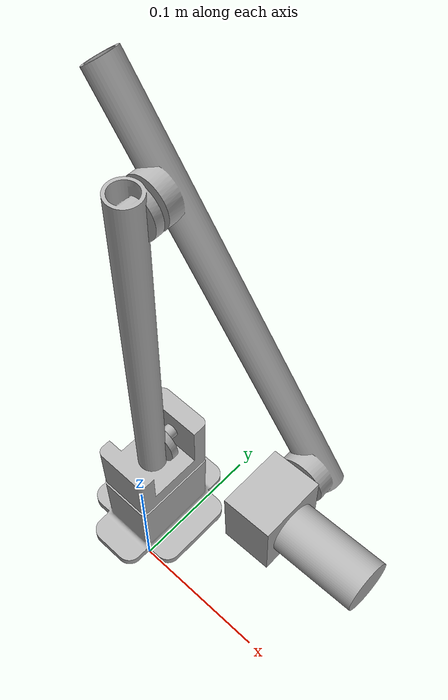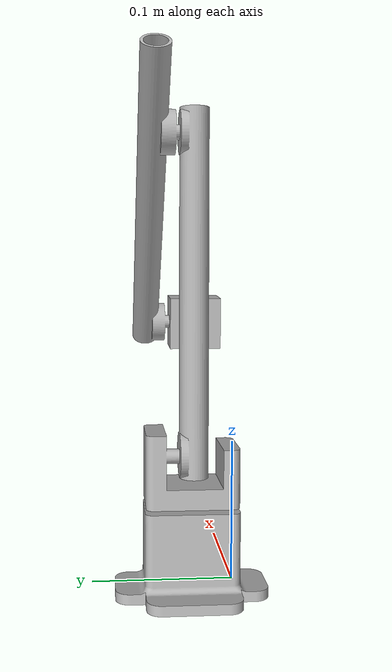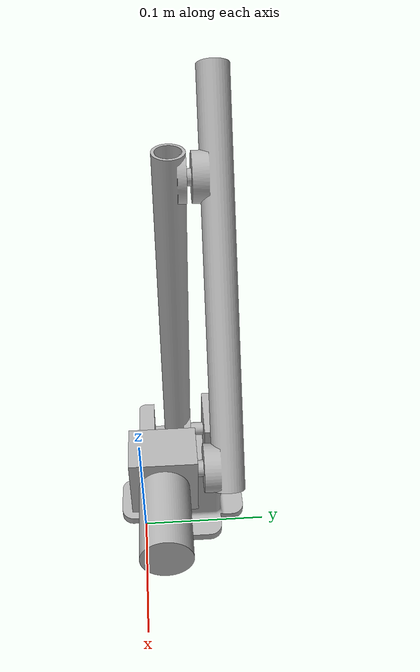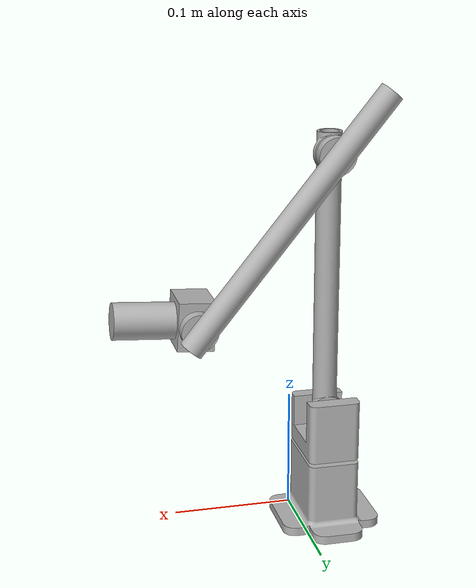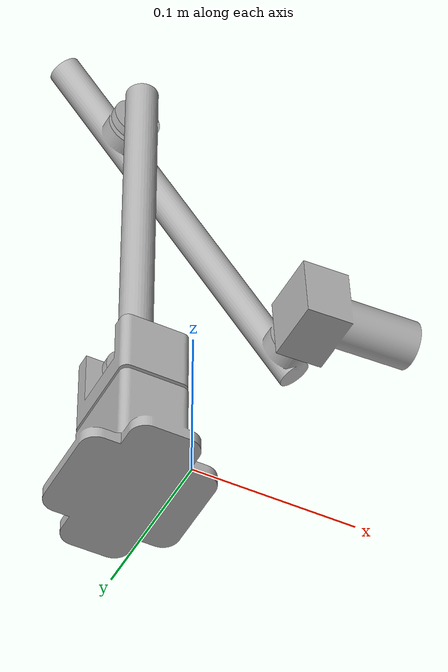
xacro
<?xml version="1.0" ?>
<robot name="simulation" xmlns:xacro="http://www.ros.org/wiki/xacro">

<xacro:include filename="$(find simulation_description)/urdf/materials.xacro" />
<xacro:include filename="$(find simulation_description)/urdf/simulation.trans" />
<xacro:include filename="$(find simulation_description)/urdf/simulation.gazebo" />
<link name="base_link">
  <inertial>
    <origin xyz="-0.02168072169092677 0.03199999998785326 0.026065845188193455" rpy="0 0 0"/>
    <mass value="0.20158716496665316"/>
    <inertia ixx="0.000155" iyy="0.000115" izz="0.000129" ixy="0.0" iyz="-0.0" ixz="0.0"/>
  </inertial>
  <visual>
    <origin xyz="0 0 0" rpy="0 0 0"/>
    <geometry>
      <mesh filename="package://simulation_description/meshes/base_link.stl" scale="0.001 0.001 0.001"/>
    </geometry>
    <material name="silver"/>
  </visual>
  <collision>
    <origin xyz="0 0 0" rpy="0 0 0"/>
    <geometry>
      <mesh filename="package://simulation_description/meshes/base_link.stl" scale="0.001 0.001 0.001"/>
    </geometry>
  </collision>
</link>

<link name="link_1_v2_1">
  <inertial>
    <origin xyz="2.783077051662919e-07 0.0028276181312013385 0.011612729430932736" rpy="0 0 0"/>
    <mass value="0.07059763098991478"/>
    <inertia ixx="4.7e-05" iyy="2.4e-05" izz="4.5e-05" ixy="-0.0" iyz="-4e-06" ixz="-0.0"/>
  </inertial>
  <visual>
    <origin xyz="0.021681 -0.032 -0.07" rpy="0 0 0"/>
    <geometry>
      <mesh filename="package://simulation_description/meshes/link_1_v2_1.stl" scale="0.001 0.001 0.001"/>
    </geometry>
    <material name="silver"/>
  </visual>
  <collision>
    <origin xyz="0.021681 -0.032 -0.07" rpy="0 0 0"/>
    <geometry>
      <mesh filename="package://simulation_description/meshes/link_1_v2_1.stl" scale="0.001 0.001 0.001"/>
    </geometry>
  </collision>
</link>

<link name="link2_v2_1">
  <inertial>
    <origin xyz="-4.5304254955455536e-05 -0.009299430381141394 0.10819157962021662" rpy="0 0 0"/>
    <mass value="0.03618222964118624"/>
    <inertia ixx="0.000225" iyy="0.000226" izz="3e-06" ixy="0.0" iyz="0.0" ixz="0.0"/>
  </inertial>
  <visual>
    <origin xyz="0.021681 -0.039966 -0.094931" rpy="0 0 0"/>
    <geometry>
      <mesh filename="package://simulation_description/meshes/link2_v2_1.stl" scale="0.001 0.001 0.001"/>
    </geometry>
    <material name="silver"/>
  </visual>
  <collision>
    <origin xyz="0.021681 -0.039966 -0.094931" rpy="0 0 0"/>
    <geometry>
      <mesh filename="package://simulation_description/meshes/link2_v2_1.stl" scale="0.001 0.001 0.001"/>
    </geometry>
  </collision>
</link>

<link name="link3_v2_1">
  <inertial>
    <origin xyz="0.08200955376480921 0.0479734835381909 -0.13226311040156546" rpy="0 0 0"/>
    <mass value="0.037607810723631216"/>
    <inertia ixx="0.000134" iyy="0.000219" izz="9e-05" ixy="1e-06" iyz="-1e-06" ixz="0.000105"/>
  </inertial>
  <visual>
    <origin xyz="0.061646 -0.007845 -0.393872" rpy="0 0 0"/>
    <geometry>
      <mesh filename="package://simulation_description/meshes/link3_v2_1.stl" scale="0.001 0.001 0.001"/>
    </geometry>
    <material name="silver"/>
  </visual>
  <collision>
    <origin xyz="0.061646 -0.007845 -0.393872" rpy="0 0 0"/>
    <geometry>
      <mesh filename="package://simulation_description/meshes/link3_v2_1.stl" scale="0.001 0.001 0.001"/>
    </geometry>
  </collision>
</link>

<link name="link4_v1_1">
  <inertial>
    <origin xyz="0.09609778731232223 0.04762625226072996 -0.1482981245218774" rpy="0 0 0"/>
    <mass value="0.08751097034085713"/>
    <inertia ixx="1.8e-05" iyy="5.5e-05" izz="5.4e-05" ixy="-0.0" iyz="-0.0" ixz="-2e-06"/>
  </inertial>
  <visual>
    <origin xyz="-0.007919 0.028885 -0.32942" rpy="0 0 0"/>
    <geometry>
      <mesh filename="package://simulation_description/meshes/link4_v1_1.stl" scale="0.001 0.001 0.001"/>
    </geometry>
    <material name="silver"/>
  </visual>
  <collision>
    <origin xyz="-0.007919 0.028885 -0.32942" rpy="0 0 0"/>
    <geometry>
      <mesh filename="package://simulation_description/meshes/link4_v1_1.stl" scale="0.001 0.001 0.001"/>
    </geometry>
  </collision>
</link>

<joint name="Revolute 1" type="revolute">
  <origin xyz="-0.021681 0.032 0.07" rpy="0 0 0"/>
  <parent link="base_link"/>
  <child link="link_1_v2_1"/>
  <axis xyz="0.0 0.0 1.0"/>
  <limit upper="6.283185" lower="0.0" effort="100" velocity="100"/>
</joint>

<joint name="Revolute 2" type="revolute">
  <origin xyz="0.0 0.007966 0.024931" rpy="0 0 0"/>
  <parent link="link_1_v2_1"/>
  <child link="link2_v2_1"/>
  <axis xyz="0.0 -1.0 0.0"/>
  <limit upper="0.523599" lower="-1.047198" effort="100" velocity="100"/>
</joint>

<joint name="Revolute 3" type="revolute">
  <origin xyz="-0.039965 -0.032121 0.298941" rpy="0 0 0"/>
  <parent link="link2_v2_1"/>
  <child link="link3_v2_1"/>
  <axis xyz="0.0 -1.0 0.0"/>
  <limit upper="1.832596" lower="0.0" effort="100" velocity="100"/>
</joint>

<joint name="Revolute 4" type="revolute">
  <origin xyz="0.069565 -0.03673 -0.064452" rpy="0 0 0"/>
  <parent link="link3_v2_1"/>
  <child link="link4_v1_1"/>
  <axis xyz="0.0 -1.0 0.0"/>
  <limit upper="1.047198" lower="-2.356194" effort="100" velocity="100"/>
</joint>

</robot>

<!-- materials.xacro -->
<robot name="simulation" xmlns:xacro="http://www.ros.org/wiki/xacro" >

<material name="silver">
  <color rgba="0.700 0.700 0.700 1.000"/>
</material>

</robot>

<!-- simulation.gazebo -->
<robot name="simulation" xmlns:xacro="http://www.ros.org/wiki/xacro" >

<xacro:property name="body_color" value="Gazebo/Silver" />

<gazebo>
  <plugin name="control" filename="libgazebo_ros_control.so"/>
</gazebo>
<gazebo reference="base_link">
  <material>${body_color}</material>
  <mu1>0.2</mu1>
  <mu2>0.2</mu2>
  <selfCollide>true</selfCollide>
  <gravity>true</gravity>
</gazebo>

<gazebo reference="link_1_v2_1">
  <material>${body_color}</material>
  <mu1>0.2</mu1>
  <mu2>0.2</mu2>
  <selfCollide>true</selfCollide>
</gazebo>

<gazebo reference="link2_v2_1">
  <material>${body_color}</material>
  <mu1>0.2</mu1>
  <mu2>0.2</mu2>
  <selfCollide>true</selfCollide>
</gazebo>

<gazebo reference="link3_v2_1">
  <material>${body_color}</material>
  <mu1>0.2</mu1>
  <mu2>0.2</mu2>
  <selfCollide>true</selfCollide>
</gazebo>

<gazebo reference="link4_v1_1">
  <material>${body_color}</material>
  <mu1>0.2</mu1>
  <mu2>0.2</mu2>
  <selfCollide>true</selfCollide>
</gazebo>

</robot>
